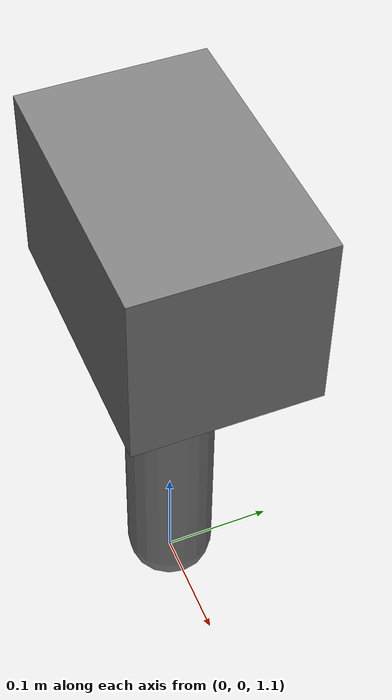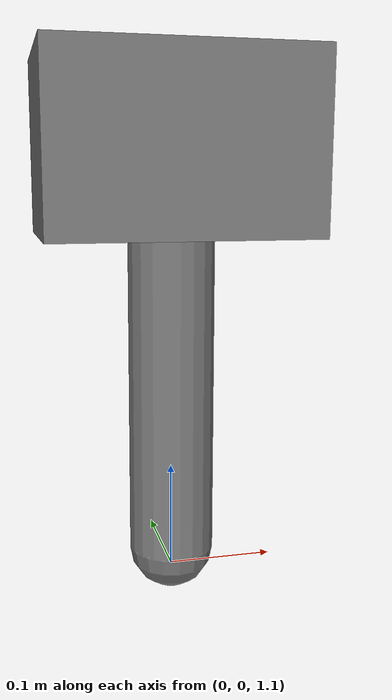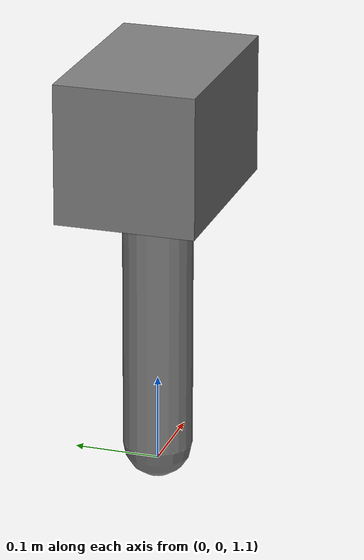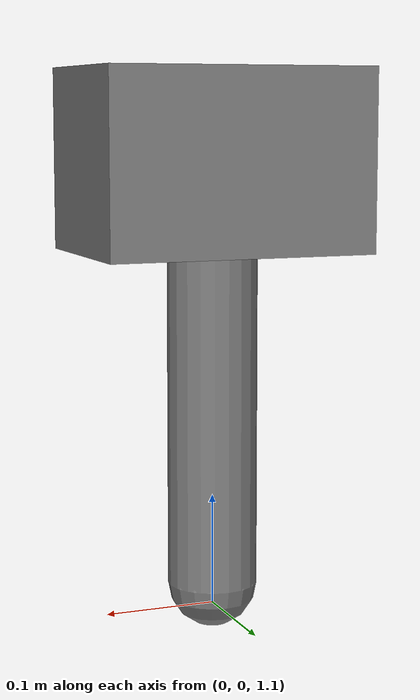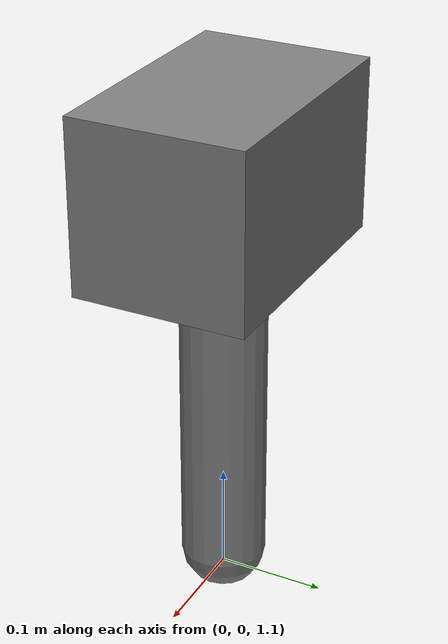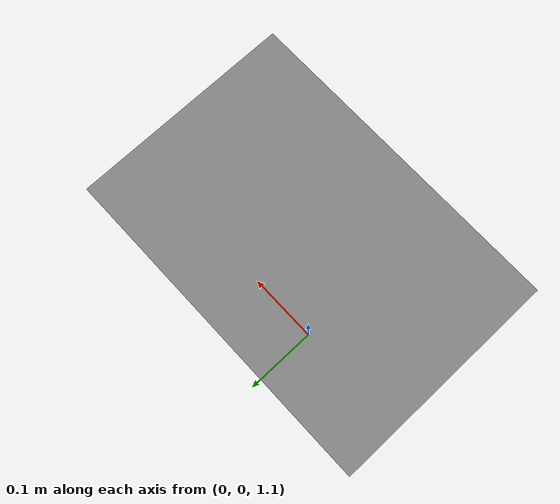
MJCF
<mujoco model="weld-body-to-body">
  <compiler angle="radian"/>
  <option gravity="0 0 -9.81" timestep="0.001" solver="Newton"
          iterations="50" tolerance="1e-10">
    <flag energy="enable"/>
  </option>

  <worldbody>
    <geom name="ground" type="plane" size="2 2 0.01"/>

    <body name="base" pos="0 0 1.5">
      <freejoint/>
      <geom name="base_box" type="box" size="0.12 0.08 0.08" mass="1.0"/>
    </body>
    <body name="arm" pos="0 0 1.42">
      <freejoint/>
      <geom name="arm_cap" type="capsule" fromto="0 0 0 0 0 -0.3" size="0.04" mass="0.5"/>
    </body>
  </worldbody>

  <equality>
    <weld body1="base" body2="arm" solref="0.003 1.0"/>
  </equality>
</mujoco>
